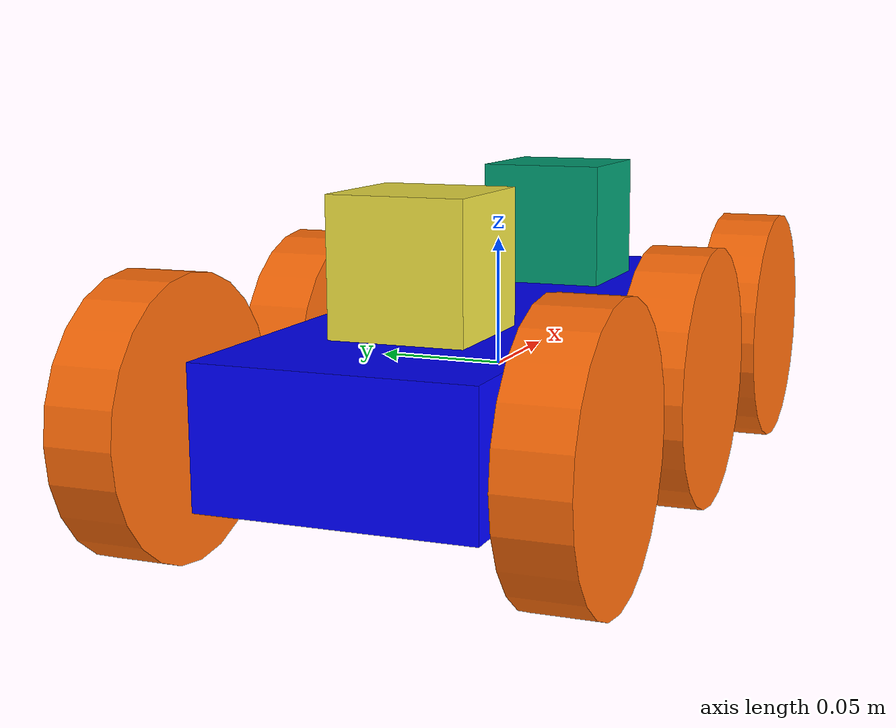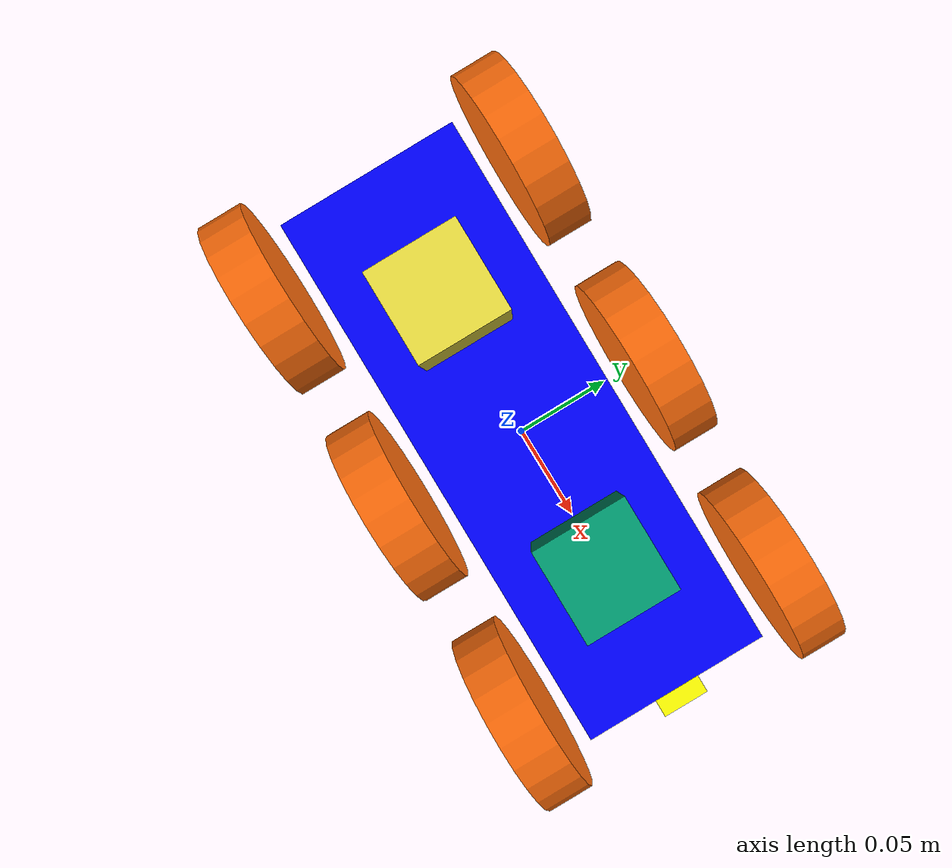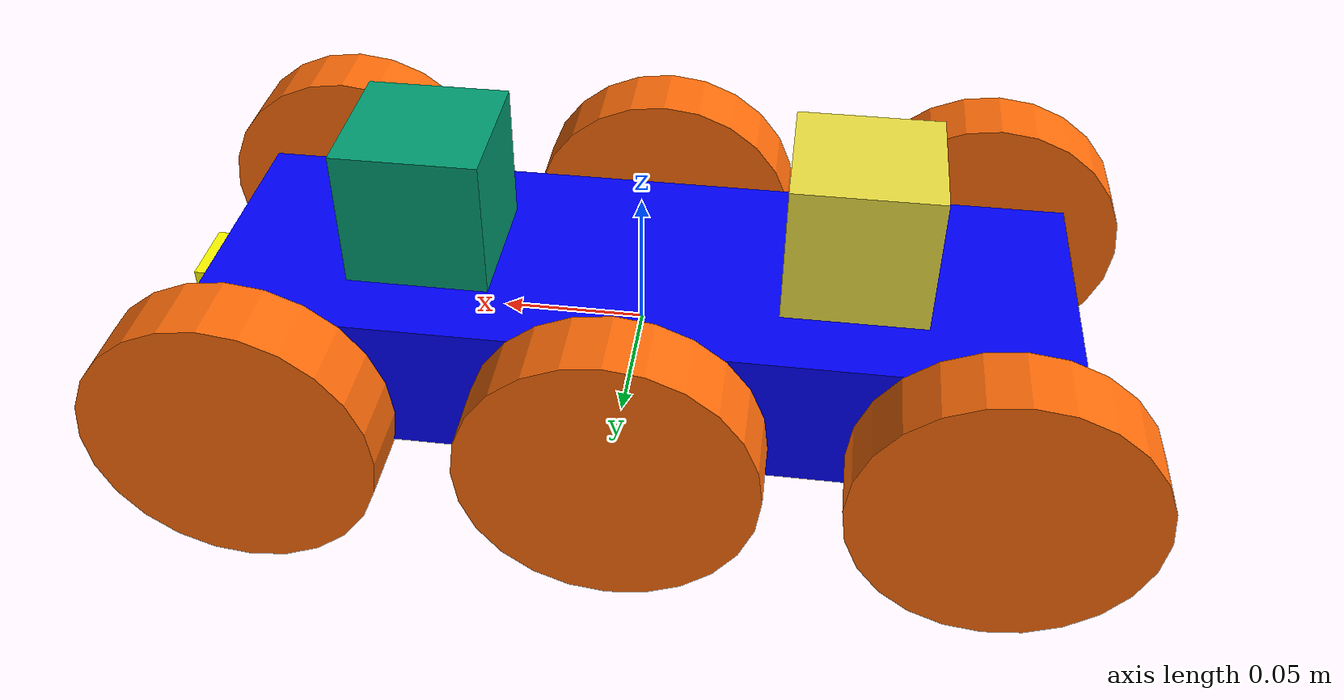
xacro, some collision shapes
<?xml version='1.0'?>

<robot name="udacity_bot" xmlns:xacro="http://www.ros.org/wiki/xacro">
  <xacro:include filename="$(find slam_project)/urdf/udacity_bot2.gazebo" />
  <link name="robot_footprint"></link>

  <joint name="robot_footprint_joint" type="fixed">
    <origin xyz="0 0 0" rpy="0 0 0" />
    <parent link="robot_footprint"/>
    <child link="chassis" />
  </joint>

  <joint name="camera_joint" type="fixed">
    <origin xyz="0.15 0 0" rpy="0 0 0" />
    <parent link="chassis"/>
    <child link="camera" />
  </joint>

  <joint name="camera_joint2" type="fixed">
        <origin xyz="0 0 0" rpy="-1.5707 0 -1.5707"/>
        <parent link="camera"/>
        <child link="camera_rgbd_frame"/>
  </joint>

  <joint name="hokuyo_joint" type="fixed">
    <origin xyz="0.075 0 0.05" rpy="0 0 0" />
    <parent link="chassis"/>
    <child link="hokuyo" />
  </joint>

  <joint name="hokuyo_joint2" type="fixed">
    <origin xyz="-0.075 0 0.05" rpy="0 0 0" />
    <parent link="chassis"/>
    <child link="hokuyo2" />
  </joint>

  <joint type="continuous" name="left_wheel_hinge">
    <origin xyz="0 0.075 0" rpy="0 0 0"/>
    <child link="left_wheel"/>
    <parent link="chassis"/>
    <axis xyz="0 1 0" rpy="0 0 0"/>
    <limit effort="10000" velocity="1000"/>
    <dynamics damping="1.0" friction="1.0"/>
  </joint>

  <joint type="continuous" name="right_wheel_hinge">
    <origin xyz="0 -0.075 0" rpy="0 0 0"/>
    <child link="right_wheel"/>
    <parent link="chassis"/>
    <axis xyz="0 1 0" rpy="0 0 0"/>
    <limit effort="10000" velocity="1000"/>
    <dynamics damping="1.0" friction="1.0"/>
  </joint>

  <joint type="continuous" name="R_wheel_hinge">
    <origin xyz="-0.125 -0.075 0" rpy="0 0 0"/>
    <child link="right_wheel2"/>
    <parent link="chassis"/>
    <axis xyz="0 1 0" rpy="0 0 0"/>
    <limit effort="10000" velocity="1000"/>
    <dynamics damping="0" friction="0"/>
  </joint>

  <joint type="continuous" name="L_wheel_hinge">
    <origin xyz="-0.125 0.075 0" rpy="0 0 0"/>
    <child link="left_wheel2"/>
    <parent link="chassis"/>
    <axis xyz="0 1 0" rpy="0 0 0"/>
    <limit effort="10000" velocity="1000"/>
    <dynamics damping="0" friction="0"/>
  </joint>

  <joint type="continuous" name="R3_wheel_hinge">
    <origin xyz="0.125 -0.075 0" rpy="0 0 0"/>
    <child link="right_wheel3"/>
    <parent link="chassis"/>
    <axis xyz="0 1 0" rpy="0 0 0"/>
    <limit effort="10000" velocity="1000"/>
    <dynamics damping="0" friction="0"/>
  </joint>

  <joint type="continuous" name="L3_wheel_hinge">
    <origin xyz="0.125 0.075 0" rpy="0 0 0"/>
    <child link="left_wheel3"/>
    <parent link="chassis"/>
    <axis xyz="0 1 0" rpy="0 0 0"/>
    <limit effort="10000" velocity="1000"/>
    <dynamics damping="0" friction="0"/>
  </joint>

  <link name='chassis'>
    <pose>0 0 0.1 0 0 0</pose>

    <inertial>
      <mass value="15.0"/>
      <origin xyz="0.0 0 0" rpy=" 0 0 0"/>
      <inertia
          ixx="0.1" ixy="0" ixz="0"
          iyy="0.1" iyz="0"
          izz="0.1"
      />
    </inertial>

    <collision name='collision'>
      <origin xyz="0 0 0" rpy=" 0 0 0"/>
      <geometry>
        <box size=".3 .1 .05"/>
      </geometry>
    </collision>

    <visual name='chassis_visual'>
      <origin xyz="0 0 0" rpy=" 0 0 0"/>
      <geometry>
        <box size=".3 .1 .05"/>
      </geometry>
      <material name="blue">
        <color rgba="${0/255} ${0/255} ${255/255} 1.0"/>
      </material>
    </visual>

  </link>

  <link name='left_wheel'>
    <pose>0 0 0 0 0 0</pose>

    <inertial>
      <mass value="5"/>
      <origin xyz="0.0 0 0" rpy=" 0 1.5707 1.5707"/>
      <inertia
          ixx="0.1" ixy="0" ixz="0"
          iyy="0.1" iyz="0"
          izz="0.1"
      />
    </inertial>
    <visual name='chassis_visual'>
      <origin xyz="0 0 0" rpy=" 0 1.5707 1.5707"/>
      <geometry>
        <cylinder radius="0.05" length="0.025"/>
      </geometry>

      <material name="Orange">
        <color rgba="${255/255} ${108/255} ${10/255} 1.0"/>
      </material>
    </visual>
    <collision name='collision'>
      <origin xyz="0 0 0" rpy=" 0 1.5707 1.5707"/>
      <geometry>
        <cylinder radius="0.05" length="0.025"/>
      </geometry>
    </collision>
  </link>

  <link name='right_wheel'>
    <pose>0 0 0 0 0 0</pose>

    <inertial>
      <mass value="5"/>
      <origin xyz="0.0 0 0" rpy=" 0 1.5707 1.5707"/>
      <inertia
          ixx="0.1" ixy="0" ixz="0"
          iyy="0.1" iyz="0"
          izz="0.1"
      />
    </inertial>
    <visual name='chassis_visual'>
      <origin xyz="0 0 0" rpy=" 0 1.5707 1.5707"/>
      <geometry>
        <cylinder radius="0.05" length="0.025"/>
      </geometry>
      <material name="Orange">
        <color rgba="${255/255} ${108/255} ${10/255} 1.0"/>
      </material>
    </visual>
    <collision name='collision'>
      <origin xyz="0 0 0" rpy=" 0 1.5707 1.5707"/>
      <geometry>
        <cylinder radius="0.05" length="0.025"/>
      </geometry>
    </collision>
  </link>

  <link name='right_wheel2'>
    <pose>0 0 0 0 0 0</pose>

    <inertial>
      <mass value="5"/>
      <origin xyz="0.0 0 0" rpy=" 0 1.5707 1.5707"/>
      <inertia
          ixx="0.1" ixy="0" ixz="0"
          iyy="0.1" iyz="0"
          izz="0.1"
      />
    </inertial>
    <visual name='chassis_visual'>
      <origin xyz="0 0 0" rpy=" 0 1.5707 1.5707"/>
      <geometry>
        <cylinder radius="0.05" length="0.025"/>
      </geometry>
      <material name="Orange">
        <color rgba="${255/255} ${108/255} ${10/255} 1.0"/>
      </material>
    </visual>
    <collision name='collision'>
      <origin xyz="0 0 0" rpy=" 0 1.5707 1.5707"/>
      <geometry>
        <cylinder radius="0.049" length="0.025"/>
      </geometry>
    </collision>
  </link>

  <link name='left_wheel2'>
    <pose>0 0 0 0 0 0</pose>

    <inertial>
      <mass value="5"/>
      <origin xyz="0.0 0 0" rpy=" 0 1.5707 1.5707"/>
      <inertia
          ixx="0.1" ixy="0" ixz="0"
          iyy="0.1" iyz="0"
          izz="0.1"
      />
    </inertial>
    <visual name='chassis_visual'>
      <origin xyz="0 0 0" rpy=" 0 1.5707 1.5707"/>
      <geometry>
        <cylinder radius="0.05" length="0.025"/>
      </geometry>
      <material name="Orange">
        <color rgba="${255/255} ${108/255} ${10/255} 1.0"/>
      </material>
    </visual>
    <collision name='collision'>
      <origin xyz="0 0 0" rpy=" 0 1.5707 1.5707"/>
      <geometry>
        <cylinder radius="0.049" length="0.025"/>
      </geometry>
    </collision>
  </link>

  <link name='left_wheel3'>
    <pose>0 0 0 0 0 0</pose>

    <inertial>
      <mass value="5"/>
      <origin xyz="0.0 0 0" rpy=" 0 1.5707 1.5707"/>
      <inertia
          ixx="0.1" ixy="0" ixz="0"
          iyy="0.1" iyz="0"
          izz="0.1"
      />
    </inertial>
    <visual name='chassis_visual'>
      <origin xyz="0 0 0" rpy=" 0 1.5707 1.5707"/>
      <geometry>
        <cylinder radius="0.05" length="0.025"/>
      </geometry>
      <material name="Orange">
        <color rgba="${255/255} ${108/255} ${10/255} 1.0"/>
      </material>
    </visual>
    <collision name='collision'>
      <origin xyz="0 0 0" rpy=" 0 1.5707 1.5707"/>
      <geometry>
        <cylinder radius="0.049" length="0.025"/>
      </geometry>
    </collision>
  </link>

  <link name='right_wheel3'>
    <pose>0 0 0 0 0 0</pose>

    <inertial>
      <mass value="5"/>
      <origin xyz="0.0 0 0" rpy=" 0 1.5707 1.5707"/>
      <inertia
          ixx="0.1" ixy="0" ixz="0"
          iyy="0.1" iyz="0"
          izz="0.1"
      />
    </inertial>
    <visual name='chassis_visual'>
      <origin xyz="0 0 0" rpy=" 0 1.5707 1.5707"/>
      <geometry>
        <cylinder radius="0.05" length="0.025"/>
      </geometry>
      <material name="Orange">
        <color rgba="${255/255} ${108/255} ${10/255} 1.0"/>
      </material>
    </visual>
    <collision name='collision'>
      <origin xyz="0 0 0" rpy=" 0 1.5707 1.5707"/>
      <geometry>
        <cylinder radius="0.049" length="0.025"/>
      </geometry>
    </collision>
  </link>

  <link name='camera'>
    <pose>0 0 0 0 0 0</pose>

    <inertial>
      <mass value="0.1"/>
      <origin xyz="0.0 0 0" rpy=" 0 0 0"/>
      <inertia
          ixx="1e-6" ixy="0" ixz="0"
          iyy="1e-6" iyz="0"
          izz="1e-6"
      />
    </inertial>

    <collision name='collision'>
      <origin xyz="0 0 0" rpy=" 0 0 0"/>
      <geometry>
        <box size="0.025 0.025 0.025"/>
      </geometry>
    </collision>

    <visual name='chassis_visual'>
      <origin xyz="0 0 0" rpy=" 0 0 0"/>
      <geometry>
        <box size="0.025 0.025 0.025"/>
      </geometry>
      <material name="yellow">
        <color rgba="${255/255} ${255/255} ${0/255} 1.0"/>
      </material>
    </visual>
  </link>

  <link name="camera_rgbd_frame"/>

  <link name='hokuyo'>
    <pose>0 0 0 0 0 0</pose>

    <inertial>
      <mass value="0.1"/>
      <origin xyz="0.0 0 0" rpy=" 0 0 0"/>
      <inertia
          ixx="1e-6" ixy="0" ixz="0"
          iyy="1e-6" iyz="0"
          izz="1e-6"
      />
    </inertial>

    <collision name='collision'>
      <origin xyz="0 0 0" rpy=" 0 0 0"/>
      <geometry>
        <box size="0.05 0.05 0.05"/>
      </geometry>
    </collision>

    <visual name='chassis_visual'>
      <origin xyz="0 0 0" rpy=" 0 0 0"/>
      <geometry>
        <mesh filename="package://slam_project/meshes/hokuyo.dae"/>
      </geometry>
    </visual>
  </link>

  <link name='hokuyo2'>
    <pose>0 0 0 0 0 0</pose>

    <inertial>
      <mass value="0.1"/>
      <origin xyz="0.0 0 0" rpy=" 0 0 3.1414"/>
      <inertia
          ixx="1e-6" ixy="0" ixz="0"
          iyy="1e-6" iyz="0"
          izz="1e-6"
      />
    </inertial>

    <collision name='collision'>
      <origin xyz="0 0 0" rpy=" 0 0 3.1414"/>
      <geometry>
        <box size="0.05 0.05 0.05"/>
      </geometry>
    </collision>

    <visual name='chassis_visual'>
      <origin xyz="0 0 0" rpy=" 0 0 3.1414"/>
      <geometry>
        <mesh filename="package://slam_project/meshes/hokuyo.dae"/>
      </geometry>
    </visual>
  </link>

</robot>
